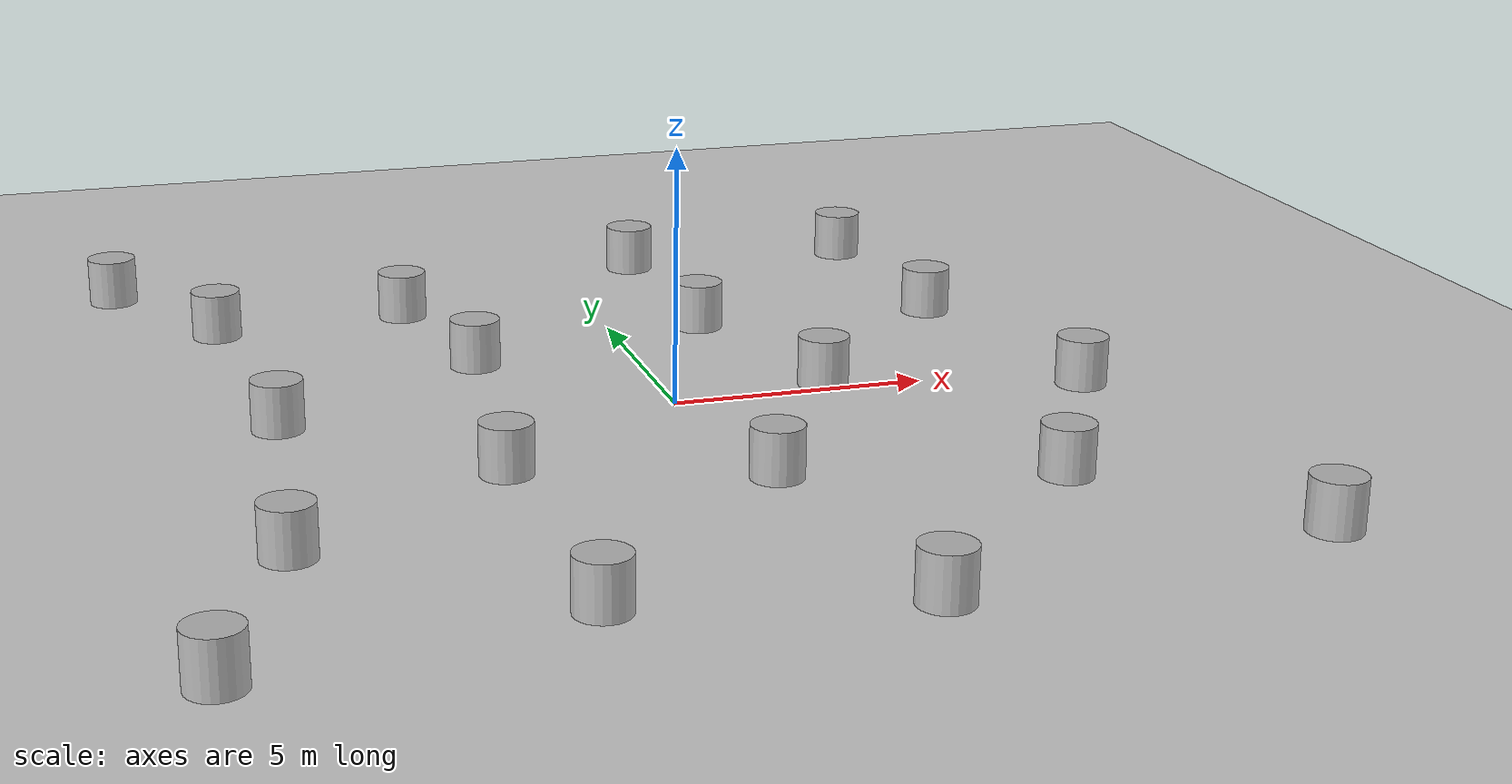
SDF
<sdf version="1.7">
 <world name="default">
  <model name="ground_plane">
   <static>1</static>
   <link name="link">
    <collision name="collision">
     <geometry><plane><normal>0 0 1</normal><size>100 100</size></plane></geometry>
     <surface>
      <contact><collide_bitmask>65535</collide_bitmask></contact>
      <friction><ode><mu>100</mu><mu2>50</mu2></ode></friction>
     </surface>
    </collision>
    <visual name="visual">
     <cast_shadows>0</cast_shadows>
     <geometry><plane><normal>0 0 1</normal><size>100 100</size></plane></geometry>
     <material>
      <script><uri>file://media/materials/scripts/gazebo.material</uri><name>Gazebo/Grey</name></script>
     </material>
    </visual>
   </link>
  </model>
  <light name="sun" type="directional">
   <pose>0 0 10 0 -0 0</pose>
   <diffuse>0.8 0.8 0.8 1</diffuse>
   <specular>0.2 0.2 0.2 1</specular>
   <attenuation>
    <range>1000</range>
    <constant>0.9</constant>
    <linear>0.01</linear>
    <quadratic>0.001</quadratic>
   </attenuation>
   <direction>-0.5 0.1 -0.9</direction>
   <spot><inner_angle>0</inner_angle><outer_angle>0</outer_angle><falloff>0</falloff></spot>
  </light>
  <model name="cylinder">
   <pose>0.610173 -4.20887 0.499998 0 -1e-06 0</pose>
   <link name="link">
    <collision name="collision">
     <geometry><cylinder><radius>0.5</radius><length>1</length></cylinder></geometry>
    </collision>
    <visual name="visual">
     <geometry><cylinder><radius>0.5</radius><length>1</length></cylinder></geometry>
    </visual>
    <inertial>
     <inertia><ixx>1</ixx><ixy>0</ixy><ixz>0</ixz><iyy>1</iyy><iyz>0</iyz><izz>1</izz></inertia>
     <mass>1</mass>
    </inertial>
   </link>
  </model>
  <gravity>0 0 -9.8</gravity>
  <magnetic_field>6e-06 2.3e-05 -4.2e-05</magnetic_field>
  <atmosphere type="adiabatic"/>
  <physics type="ode">
   <max_step_size>0.001</max_step_size>
   <real_time_factor>1</real_time_factor>
   <real_time_update_rate>1000</real_time_update_rate>
  </physics>
  <scene><ambient>0.4 0.4 0.4 1</ambient><background>0.7 0.7 0.7 1</background><shadows>1</shadows></scene>
  <spherical_coordinates>
   <surface_model>EARTH_WGS84</surface_model>
   <latitude_deg>0</latitude_deg>
   <longitude_deg>0</longitude_deg>
   <elevation>0</elevation>
   <heading_deg>0</heading_deg>
  </spherical_coordinates>
  <model name="cylinder_clone">
   <pose>3.12011 0.356022 0.499998 0 -1e-06 0</pose>
   <link name="link">
    <collision name="collision">
     <geometry><cylinder><radius>0.5</radius><length>1</length></cylinder></geometry>
    </collision>
    <visual name="visual">
     <geometry><cylinder><radius>0.5</radius><length>1</length></cylinder></geometry>
    </visual>
    <inertial>
     <inertia><ixx>1</ixx><ixy>0</ixy><ixz>0</ixz><iyy>1</iyy><iyz>0</iyz><izz>1</izz></inertia>
     <mass>1</mass>
    </inertial>
   </link>
  </model>
  <model name="cylinder_clone_0">
   <pose>1.86154 4.59472 0.499992 -1e-06 -0 0</pose>
   <link name="link">
    <collision name="collision">
     <geometry><cylinder><radius>0.5</radius><length>1</length></cylinder></geometry>
    </collision>
    <visual name="visual">
     <geometry><cylinder><radius>0.5</radius><length>1</length></cylinder></geometry>
    </visual>
    <inertial>
     <inertia><ixx>1</ixx><ixy>0</ixy><ixz>0</ixz><iyy>1</iyy><iyz>0</iyz><izz>1</izz></inertia>
     <mass>1</mass>
    </inertial>
   </link>
  </model>
  <model name="cylinder_clone_1">
   <pose>-3.20534 3.28736 0.499992 -1e-06 -0 0</pose>
   <link name="link">
    <collision name="collision">
     <geometry><cylinder><radius>0.5</radius><length>1</length></cylinder></geometry>
    </collision>
    <visual name="visual">
     <geometry><cylinder><radius>0.5</radius><length>1</length></cylinder></geometry>
    </visual>
    <inertial>
     <inertia><ixx>1</ixx><ixy>0</ixy><ixz>0</ixz><iyy>1</iyy><iyz>0</iyz><izz>1</izz></inertia>
     <mass>1</mass>
    </inertial>
   </link>
  </model>
  <model name="cylinder_clone_2">
   <pose>-3.93381 -2.77189 0.499998 1e-06 -0 0</pose>
   <link name="link">
    <collision name="collision">
     <geometry><cylinder><radius>0.5</radius><length>1</length></cylinder></geometry>
    </collision>
    <visual name="visual">
     <geometry><cylinder><radius>0.5</radius><length>1</length></cylinder></geometry>
    </visual>
    <inertial>
     <inertia><ixx>1</ixx><ixy>0</ixy><ixz>0</ixz><iyy>1</iyy><iyz>0</iyz><izz>1</izz></inertia>
     <mass>1</mass>
    </inertial>
   </link>
  </model>
  <model name="cylinder_clone_3">
   <pose>-7.50809 0.617263 0.499998 1e-06 -0 0</pose>
   <link name="link">
    <collision name="collision">
     <geometry><cylinder><radius>0.5</radius><length>1</length></cylinder></geometry>
    </collision>
    <visual name="visual">
     <geometry><cylinder><radius>0.5</radius><length>1</length></cylinder></geometry>
    </visual>
    <inertial>
     <inertia><ixx>1</ixx><ixy>0</ixy><ixz>0</ixz><iyy>1</iyy><iyz>0</iyz><izz>1</izz></inertia>
     <mass>1</mass>
    </inertial>
   </link>
  </model>
  <model name="cylinder_clone_4">
   <pose>-3.81475 -8.91041 0.499992 -1e-06 -0 0</pose>
   <link name="link">
    <collision name="collision">
     <geometry><cylinder><radius>0.5</radius><length>1</length></cylinder></geometry>
    </collision>
    <visual name="visual">
     <geometry><cylinder><radius>0.5</radius><length>1</length></cylinder></geometry>
    </visual>
    <inertial>
     <inertia><ixx>1</ixx><ixy>0</ixy><ixz>0</ixz><iyy>1</iyy><iyz>0</iyz><izz>1</izz></inertia>
     <mass>1</mass>
    </inertial>
   </link>
  </model>
  <model name="cylinder_clone_5">
   <pose>5.54621 -5.51322 0.499992 -1e-06 -0 0</pose>
   <link name="link">
    <collision name="collision">
     <geometry><cylinder><radius>0.5</radius><length>1</length></cylinder></geometry>
    </collision>
    <visual name="visual">
     <geometry><cylinder><radius>0.5</radius><length>1</length></cylinder></geometry>
    </visual>
    <inertial>
     <inertia><ixx>1</ixx><ixy>0</ixy><ixz>0</ixz><iyy>1</iyy><iyz>0</iyz><izz>1</izz></inertia>
     <mass>1</mass>
    </inertial>
   </link>
  </model>
  <model name="cylinder_clone_6">
   <pose>6.88279 4.332 0.499992 -1e-06 -0 0</pose>
   <link name="link">
    <collision name="collision">
     <geometry><cylinder><radius>0.5</radius><length>1</length></cylinder></geometry>
    </collision>
    <visual name="visual">
     <geometry><cylinder><radius>0.5</radius><length>1</length></cylinder></geometry>
    </visual>
    <inertial>
     <inertia><ixx>1</ixx><ixy>0</ixy><ixz>0</ixz><iyy>1</iyy><iyz>0</iyz><izz>1</izz></inertia>
     <mass>1</mass>
    </inertial>
   </link>
  </model>
  <model name="cylinder_clone_7">
   <pose>-4 7 0.499998 1e-06 -0 0</pose>
   <link name="link">
    <collision name="collision">
     <geometry><cylinder><radius>0.5</radius><length>1</length></cylinder></geometry>
    </collision>
    <visual name="visual">
     <geometry><cylinder><radius>0.5</radius><length>1</length></cylinder></geometry>
    </visual>
    <inertial>
     <inertia><ixx>1</ixx><ixy>0</ixy><ixz>0</ixz><iyy>1</iyy><iyz>0</iyz><izz>1</izz></inertia>
     <mass>1</mass>
    </inertial>
   </link>
  </model>
  <model name="cylinder_clone_8">
   <pose>-7.96553 6.65771 0.499998 1e-06 -0 0</pose>
   <link name="link">
    <collision name="collision">
     <geometry><cylinder><radius>0.5</radius><length>1</length></cylinder></geometry>
    </collision>
    <visual name="visual">
     <geometry><cylinder><radius>0.5</radius><length>1</length></cylinder></geometry>
    </visual>
    <inertial>
     <inertia><ixx>1</ixx><ixy>0</ixy><ixz>0</ixz><iyy>1</iyy><iyz>0</iyz><izz>1</izz></inertia>
     <mass>1</mass>
    </inertial>
   </link>
  </model>
  <model name="cylinder_clone_9">
   <pose>-8.158 -5.49996 0.499992 -1e-06 -0 0</pose>
   <link name="link">
    <collision name="collision">
     <geometry><cylinder><radius>0.5</radius><length>1</length></cylinder></geometry>
    </collision>
    <visual name="visual">
     <geometry><cylinder><radius>0.5</radius><length>1</length></cylinder></geometry>
    </visual>
    <inertial>
     <inertia><ixx>1</ixx><ixy>0</ixy><ixz>0</ixz><iyy>1</iyy><iyz>0</iyz><izz>1</izz></inertia>
     <mass>1</mass>
    </inertial>
   </link>
  </model>
  <model name="cylinder_clone_10">
   <pose>7.98046 -1.01864 0.499992 -1e-06 1e-06 0</pose>
   <link name="link">
    <collision name="collision">
     <geometry><cylinder><radius>0.5</radius><length>1</length></cylinder></geometry>
    </collision>
    <visual name="visual">
     <geometry><cylinder><radius>0.5</radius><length>1</length></cylinder></geometry>
    </visual>
    <inertial>
     <inertia><ixx>1</ixx><ixy>0</ixy><ixz>0</ixz><iyy>1</iyy><iyz>0</iyz><izz>1</izz></inertia>
     <mass>1</mass>
    </inertial>
   </link>
  </model>
  <model name="cylinder_clone_11">
   <pose>1.36708 -10.0249 0.499992 -1e-06 -0 0</pose>
   <link name="link">
    <collision name="collision">
     <geometry><cylinder><radius>0.5</radius><length>1</length></cylinder></geometry>
    </collision>
    <visual name="visual">
     <geometry><cylinder><radius>0.5</radius><length>1</length></cylinder></geometry>
    </visual>
    <inertial>
     <inertia><ixx>1</ixx><ixy>0</ixy><ixz>0</ixz><iyy>1</iyy><iyz>0</iyz><izz>1</izz></inertia>
     <mass>1</mass>
    </inertial>
   </link>
  </model>
  <model name="cylinder_clone_12">
   <pose>1.65211 9.26502 0.499992 -1e-06 -0 0</pose>
   <link name="link">
    <collision name="collision">
     <geometry><cylinder><radius>0.5</radius><length>1</length></cylinder></geometry>
    </collision>
    <visual name="visual">
     <geometry><cylinder><radius>0.5</radius><length>1</length></cylinder></geometry>
    </visual>
    <inertial>
     <inertia><ixx>1</ixx><ixy>0</ixy><ixz>0</ixz><iyy>1</iyy><iyz>0</iyz><izz>1</izz></inertia>
     <mass>1</mass>
    </inertial>
   </link>
  </model>
  <model name="cylinder_clone_13">
   <pose>6.63096 9.12339 0.499998 1e-06 -0 0</pose>
   <link name="link">
    <collision name="collision">
     <geometry><cylinder><radius>0.5</radius><length>1</length></cylinder></geometry>
    </collision>
    <visual name="visual">
     <geometry><cylinder><radius>0.5</radius><length>1</length></cylinder></geometry>
    </visual>
    <inertial>
     <inertia><ixx>1</ixx><ixy>0</ixy><ixz>0</ixz><iyy>1</iyy><iyz>0</iyz><izz>1</izz></inertia>
     <mass>1</mass>
    </inertial>
   </link>
  </model>
  <model name="cylinder_clone_14">
   <pose>8.72013 -9.06207 0.499992 0 -0 0</pose>
   <link name="link">
    <collision name="collision">
     <geometry><cylinder><radius>0.5</radius><length>1</length></cylinder></geometry>
    </collision>
    <visual name="visual">
     <geometry><cylinder><radius>0.5</radius><length>1</length></cylinder></geometry>
    </visual>
    <inertial>
     <inertia><ixx>1</ixx><ixy>0</ixy><ixz>0</ixz><iyy>1</iyy><iyz>0</iyz><izz>1</izz></inertia>
     <mass>1</mass>
    </inertial>
   </link>
  </model>
  <model name="cylinder_clone_15">
   <pose>-9.80351 -9.94204 0.499998 0 -0 0</pose>
   <link name="link">
    <collision name="collision">
     <geometry><cylinder><radius>0.5</radius><length>1</length></cylinder></geometry>
    </collision>
    <visual name="visual">
     <geometry><cylinder><radius>0.5</radius><length>1</length></cylinder></geometry>
    </visual>
    <inertial>
     <inertia><ixx>1</ixx><ixy>0</ixy><ixz>0</ixz><iyy>1</iyy><iyz>0</iyz><izz>1</izz></inertia>
     <mass>1</mass>
    </inertial>
   </link>
  </model>
  <model name="cylinder_clone_16">
   <pose>-9.85949 9.76844 0.499992 0 -0 0</pose>
   <link name="link">
    <collision name="collision">
     <geometry><cylinder><radius>0.5</radius><length>1</length></cylinder></geometry>
    </collision>
    <visual name="visual">
     <geometry><cylinder><radius>0.5</radius><length>1</length></cylinder></geometry>
    </visual>
    <inertial>
     <inertia><ixx>1</ixx><ixy>0</ixy><ixz>0</ixz><iyy>1</iyy><iyz>0</iyz><izz>1</izz></inertia>
     <mass>1</mass>
    </inertial>
   </link>
  </model>
 </world>
</sdf>
